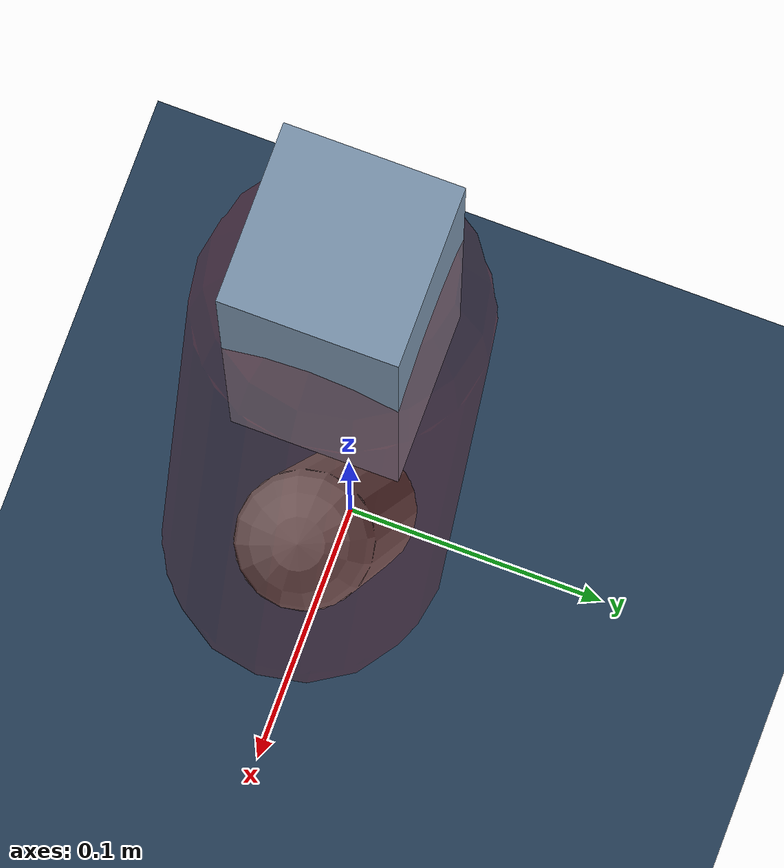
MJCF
<mujoco model="Hopper2D">
	<compiler inertiafromgeom="true" angle="radian" />
	<option timestep="0.001" integrator="implicit" cone="elliptic" solver="Newton" tolerance="1e-10" />

	<default>
		<geom contype="1" conaffinity="1" condim="3" friction="2 0.005 0.0001" solref="0.005 1" />
		<joint limited="true" damping="0.1" />
	</default>

	<asset>
		<texture name="skybox" type="skybox" builtin="gradient" rgb1=".4 .6 .8" rgb2="0 0 0" width="800" height="800" />
		<texture name="grid" type="2d" builtin="checker" rgb1=".1 .2 .3" rgb2=".2 .3 .4" width="300" height="300" mark="edge" markrgb=".2 .3 .4" />
		<material name="ground" texture="grid" texrepeat="1 1" texuniform="true" reflectance="0.1" />
		<material name="leg" rgba="0.5 0.6 0.7 1" />
	</asset>

	<worldbody>

		<geom name="floor" type="plane" size="5 5 0.25" material="ground" />

		<light directional="false" diffuse="0.8 0.8 0.8" specular="0.3 0.3 0.3" pos="0 0 2" dir="0 0 -1" />
		<light mode="targetbodycom" target="base" directional="false" diffuse="0.8 0.8 0.8" specular="0.3 0.3 0.3" pos="0 0 2" dir="0 0 -1" />

		<camera name="fixed" pos="0 -2 1" xyaxes="1 0 0 0 0 1" />
		<camera name="tracking" mode="trackcom" pos="0 -3 1" />

		<body name="root" pos="0 0 0.3750181607828787">
			<joint name="slide_x" type="slide" axis="1 0 0" range="-100 100" />
			<joint name="slide_z" type="slide" axis="0 0 1" range="0 10" />

			<body name="base" pos="0 0 0">
				<geom name="torso" type="box" size="0.03 0.03 0.1" mass="2.307" material="leg" />

				<body name="link1" pos="0 0 0" euler="0 1.3601756908089078 0">
					<joint type="hinge" axis="0 -1 0" pos="0 0 0" name="hinge1" limited="true" range="-3.14 3.14" stiffness="0" damping="0.1" />
					<geom name="thigh" type="capsule" fromto="0 0 0 0.20780332499688847 0 0" size="0.05" rgba="0.5 0 0 0.3" mass="0.7490279799925323" />

					<body name="link2" pos="0.20780332499688847 0 0" euler="0 0.45829837515197847 0">
						<joint type="hinge" axis="0 -1 0" pos="0 0 0" name="hinge2" limited="true" range="-3.14 3.14" stiffness="0" damping="0.1" />
						<geom name="shank" type="capsule" fromto="0 0 0 0.17721483578599023 0 0" size="0.025" mass="0.38149335220739117" />

					</body>
				</body>
			</body>
		</body>
	</worldbody>

	<actuator>
		<motor name="torque1" joint="hinge1" ctrlrange="-62.94528466028596 62.94528466028596" ctrllimited="true" gear="1" />
		<motor name="torque2" joint="hinge2" ctrlrange="-26.775675229916235 26.775675229916235" ctrllimited="true" gear="1" />
	</actuator>
</mujoco>
